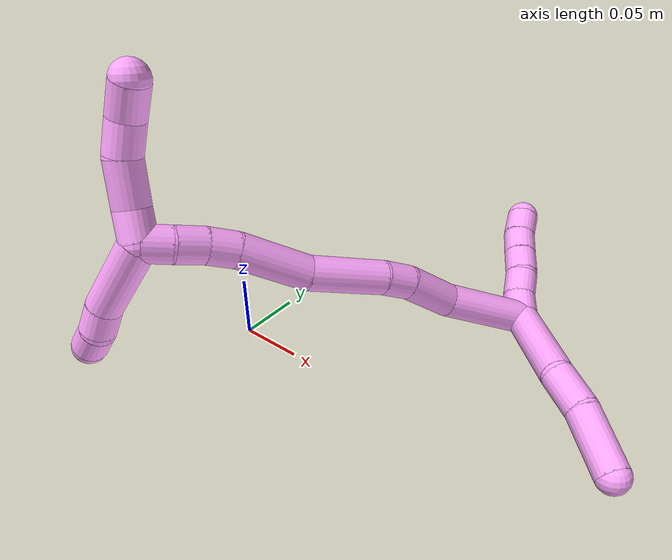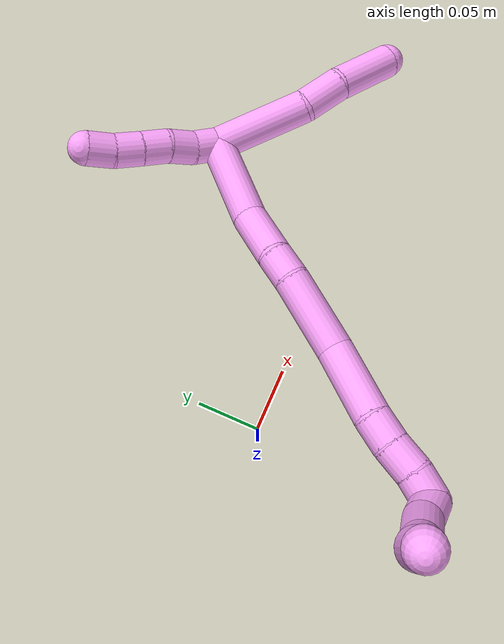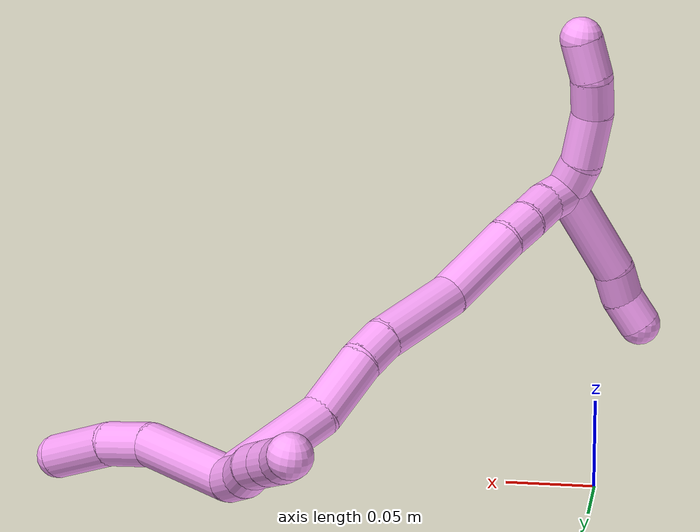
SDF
<sdf version="1.7">
 <world name="default">
  <model name="4">
   <static>0</static>
   <link name="4">
    <collision name="collision-cylinder-e_1_2_8">
     <pose>0.015532 -0.031163 -0.00618 1.76655 0.454726 0.549257</pose>
     <geometry><cylinder><radius>0.0125</radius><length>0.070727</length></cylinder></geometry>
     <surface>
      <friction><ode><mu>1.16</mu><mu2>1.16</mu2><slip1>0</slip1><slip2>0</slip2></ode></friction>
      <contact><ode><kp>1e+06</kp><kd>1</kd><max_vel>0</max_vel><min_depth>0.001</min_depth></ode></contact>
     </surface>
    </collision>
    <visual name="visual-cylinder-e_1_2_8">
     <pose>0.015532 -0.031163 -0.00618 1.76655 0.454726 0.549257</pose>
     <geometry><cylinder><radius>0.0125</radius><length>0.070727</length></cylinder></geometry>
     <material><ambient>1 0.65098 0.996078 1</ambient></material>
    </visual>
    <collision name="collision-cylinder-e_2_8_9">
     <pose>0.040198 -0.073799 -0.018293 2.04813 0.615501 0.962572</pose>
     <geometry><cylinder><radius>0.0125</radius><length>0.031639</length></cylinder></geometry>
     <surface>
      <friction><ode><mu>1.16</mu><mu2>1.16</mu2><slip1>0</slip1><slip2>0</slip2></ode></friction>
      <contact><ode><kp>1e+06</kp><kd>1</kd><max_vel>0</max_vel><min_depth>0.001</min_depth></ode></contact>
     </surface>
    </collision>
    <visual name="visual-cylinder-e_2_8_9">
     <pose>0.040198 -0.073799 -0.018293 2.04813 0.615501 0.962572</pose>
     <geometry><cylinder><radius>0.0125</radius><length>0.031639</length></cylinder></geometry>
     <material><ambient>1 0.65098 0.996078 1</ambient></material>
    </visual>
    <collision name="collision-cylinder-e_3_9_6">
     <pose>0.06032 -0.101998 -0.03714 2.22823 0.479538 0.923416</pose>
     <geometry><cylinder><radius>0.0125</radius><length>0.047634</length></cylinder></geometry>
     <surface>
      <friction><ode><mu>1.16</mu><mu2>1.16</mu2><slip1>0</slip1><slip2>0</slip2></ode></friction>
      <contact><ode><kp>1e+06</kp><kd>1</kd><max_vel>0</max_vel><min_depth>0.001</min_depth></ode></contact>
     </surface>
    </collision>
    <visual name="visual-cylinder-e_3_9_6">
     <pose>0.06032 -0.101998 -0.03714 2.22823 0.479538 0.923416</pose>
     <geometry><cylinder><radius>0.0125</radius><length>0.047634</length></cylinder></geometry>
     <material><ambient>1 0.65098 0.996078 1</ambient></material>
    </visual>
    <collision name="collision-cylinder-e_1_2_10">
     <pose>-0.002071 0.008058 0.005548 -0.967786 -0.208612 0.109928</pose>
     <geometry><cylinder><radius>0.0125</radius><length>0.02</length></cylinder></geometry>
     <surface>
      <friction><ode><mu>1.16</mu><mu2>1.16</mu2><slip1>0</slip1><slip2>0</slip2></ode></friction>
      <contact><ode><kp>1e+06</kp><kd>1</kd><max_vel>0</max_vel><min_depth>0.001</min_depth></ode></contact>
     </surface>
    </collision>
    <visual name="visual-cylinder-e_1_2_10">
     <pose>-0.002071 0.008058 0.005548 -0.967786 -0.208612 0.109928</pose>
     <geometry><cylinder><radius>0.0125</radius><length>0.02</length></cylinder></geometry>
     <material><ambient>1 0.65098 0.996078 1</ambient></material>
    </visual>
    <collision name="collision-cylinder-e_2_10_11">
     <pose>-0.004224 0.023584 0.017746 -0.84334 -0.0082 0.003678</pose>
     <geometry><cylinder><radius>0.0125</radius><length>0.02</length></cylinder></geometry>
     <surface>
      <friction><ode><mu>1.16</mu><mu2>1.16</mu2><slip1>0</slip1><slip2>0</slip2></ode></friction>
      <contact><ode><kp>1e+06</kp><kd>1</kd><max_vel>0</max_vel><min_depth>0.001</min_depth></ode></contact>
     </surface>
    </collision>
    <visual name="visual-cylinder-e_2_10_11">
     <pose>-0.004224 0.023584 0.017746 -0.84334 -0.0082 0.003678</pose>
     <geometry><cylinder><radius>0.0125</radius><length>0.02</length></cylinder></geometry>
     <material><ambient>1 0.65098 0.996078 1</ambient></material>
    </visual>
    <collision name="collision-cylinder-e_3_11_12">
     <pose>-0.00599 0.039287 0.029814 -0.988756 -0.169205 0.09136</pose>
     <geometry><cylinder><radius>0.0125</radius><length>0.02</length></cylinder></geometry>
     <surface>
      <friction><ode><mu>1.16</mu><mu2>1.16</mu2><slip1>0</slip1><slip2>0</slip2></ode></friction>
      <contact><ode><kp>1e+06</kp><kd>1</kd><max_vel>0</max_vel><min_depth>0.001</min_depth></ode></contact>
     </surface>
    </collision>
    <visual name="visual-cylinder-e_3_11_12">
     <pose>-0.00599 0.039287 0.029814 -0.988756 -0.169205 0.09136</pose>
     <geometry><cylinder><radius>0.0125</radius><length>0.02</length></cylinder></geometry>
     <material><ambient>1 0.65098 0.996078 1</ambient></material>
    </visual>
    <collision name="collision-cylinder-e_4_12_13">
     <pose>-0.009169 0.055881 0.040512 -1.00756 -0.1501 0.082847</pose>
     <geometry><cylinder><radius>0.0125</radius><length>0.02</length></cylinder></geometry>
     <surface>
      <friction><ode><mu>1.16</mu><mu2>1.16</mu2><slip1>0</slip1><slip2>0</slip2></ode></friction>
      <contact><ode><kp>1e+06</kp><kd>1</kd><max_vel>0</max_vel><min_depth>0.001</min_depth></ode></contact>
     </surface>
    </collision>
    <visual name="visual-cylinder-e_4_12_13">
     <pose>-0.009169 0.055881 0.040512 -1.00756 -0.1501 0.082847</pose>
     <geometry><cylinder><radius>0.0125</radius><length>0.02</length></cylinder></geometry>
     <material><ambient>1 0.65098 0.996078 1</ambient></material>
    </visual>
    <collision name="collision-cylinder-e_5_13_5">
     <pose>-0.01036 0.072503 0.051417 -0.97303 0.03046 -0.016112</pose>
     <geometry><cylinder><radius>0.0125</radius><length>0.02</length></cylinder></geometry>
     <surface>
      <friction><ode><mu>1.16</mu><mu2>1.16</mu2><slip1>0</slip1><slip2>0</slip2></ode></friction>
      <contact><ode><kp>1e+06</kp><kd>1</kd><max_vel>0</max_vel><min_depth>0.001</min_depth></ode></contact>
     </surface>
    </collision>
    <visual name="visual-cylinder-e_5_13_5">
     <pose>-0.01036 0.072503 0.051417 -0.97303 0.03046 -0.016112</pose>
     <geometry><cylinder><radius>0.0125</radius><length>0.02</length></cylinder></geometry>
     <material><ambient>1 0.65098 0.996078 1</ambient></material>
    </visual>
    <collision name="collision-cylinder-e_1_2_14">
     <pose>-0.026912 -0.016156 0.011713 0.943496 -0.932744 -0.50278</pose>
     <geometry><cylinder><radius>0.0125</radius><length>0.067006</length></cylinder></geometry>
     <surface>
      <friction><ode><mu>1.16</mu><mu2>1.16</mu2><slip1>0</slip1><slip2>0</slip2></ode></friction>
      <contact><ode><kp>1e+06</kp><kd>1</kd><max_vel>0</max_vel><min_depth>0.001</min_depth></ode></contact>
     </surface>
    </collision>
    <visual name="visual-cylinder-e_1_2_14">
     <pose>-0.026912 -0.016156 0.011713 0.943496 -0.932744 -0.50278</pose>
     <geometry><cylinder><radius>0.0125</radius><length>0.067006</length></cylinder></geometry>
     <material><ambient>1 0.65098 0.996078 1</ambient></material>
    </visual>
    <collision name="collision-cylinder-e_2_14_15">
     <pose>-0.06621 -0.043922 0.034211 0.822237 -0.663462 -0.298115</pose>
     <geometry><cylinder><radius>0.0125</radius><length>0.040225</length></cylinder></geometry>
     <surface>
      <friction><ode><mu>1.16</mu><mu2>1.16</mu2><slip1>0</slip1><slip2>0</slip2></ode></friction>
      <contact><ode><kp>1e+06</kp><kd>1</kd><max_vel>0</max_vel><min_depth>0.001</min_depth></ode></contact>
     </surface>
    </collision>
    <visual name="visual-cylinder-e_2_14_15">
     <pose>-0.06621 -0.043922 0.034211 0.822237 -0.663462 -0.298115</pose>
     <geometry><cylinder><radius>0.0125</radius><length>0.040225</length></cylinder></geometry>
     <material><ambient>1 0.65098 0.996078 1</ambient></material>
    </visual>
    <collision name="collision-cylinder-e_3_15_16">
     <pose>-0.086099 -0.062386 0.048832 1.06047 -0.762575 -0.461669</pose>
     <geometry><cylinder><radius>0.0125</radius><length>0.021725</length></cylinder></geometry>
     <surface>
      <friction><ode><mu>1.16</mu><mu2>1.16</mu2><slip1>0</slip1><slip2>0</slip2></ode></friction>
      <contact><ode><kp>1e+06</kp><kd>1</kd><max_vel>0</max_vel><min_depth>0.001</min_depth></ode></contact>
     </surface>
    </collision>
    <visual name="visual-cylinder-e_3_15_16">
     <pose>-0.086099 -0.062386 0.048832 1.06047 -0.762575 -0.461669</pose>
     <geometry><cylinder><radius>0.0125</radius><length>0.021725</length></cylinder></geometry>
     <material><ambient>1 0.65098 0.996078 1</ambient></material>
    </visual>
    <collision name="collision-cylinder-e_4_16_17">
     <pose>-0.115652 -0.085906 0.058932 1.21128 -0.891501 -0.639059</pose>
     <geometry><cylinder><radius>0.0125</radius><length>0.056681</length></cylinder></geometry>
     <surface>
      <friction><ode><mu>1.16</mu><mu2>1.16</mu2><slip1>0</slip1><slip2>0</slip2></ode></friction>
      <contact><ode><kp>1e+06</kp><kd>1</kd><max_vel>0</max_vel><min_depth>0.001</min_depth></ode></contact>
     </surface>
    </collision>
    <visual name="visual-cylinder-e_4_16_17">
     <pose>-0.115652 -0.085906 0.058932 1.21128 -0.891501 -0.639059</pose>
     <geometry><cylinder><radius>0.0125</radius><length>0.056681</length></cylinder></geometry>
     <material><ambient>1 0.65098 0.996078 1</ambient></material>
    </visual>
    <collision name="collision-cylinder-e_5_17_18">
     <pose>-0.156197 -0.116634 0.07697 0.873755 -0.789596 -0.384348</pose>
     <geometry><cylinder><radius>0.0125</radius><length>0.052093</length></cylinder></geometry>
     <surface>
      <friction><ode><mu>1.16</mu><mu2>1.16</mu2><slip1>0</slip1><slip2>0</slip2></ode></friction>
      <contact><ode><kp>1e+06</kp><kd>1</kd><max_vel>0</max_vel><min_depth>0.001</min_depth></ode></contact>
     </surface>
    </collision>
    <visual name="visual-cylinder-e_5_17_18">
     <pose>-0.156197 -0.116634 0.07697 0.873755 -0.789596 -0.384348</pose>
     <geometry><cylinder><radius>0.0125</radius><length>0.052093</length></cylinder></geometry>
     <material><ambient>1 0.65098 0.996078 1</ambient></material>
    </visual>
    <collision name="collision-cylinder-e_6_18_19">
     <pose>-0.182252 -0.137121 0.091962 1.10639 -0.810811 -0.518136</pose>
     <geometry><cylinder><radius>0.0125</radius><length>0.020861</length></cylinder></geometry>
     <surface>
      <friction><ode><mu>1.16</mu><mu2>1.16</mu2><slip1>0</slip1><slip2>0</slip2></ode></friction>
      <contact><ode><kp>1e+06</kp><kd>1</kd><max_vel>0</max_vel><min_depth>0.001</min_depth></ode></contact>
     </surface>
    </collision>
    <visual name="visual-cylinder-e_6_18_19">
     <pose>-0.182252 -0.137121 0.091962 1.10639 -0.810811 -0.518136</pose>
     <geometry><cylinder><radius>0.0125</radius><length>0.020861</length></cylinder></geometry>
     <material><ambient>1 0.65098 0.996078 1</ambient></material>
    </visual>
    <collision name="collision-cylinder-e_7_19_20">
     <pose>-0.197002 -0.151069 0.097505 1.27113 -0.740021 -0.557357</pose>
     <geometry><cylinder><radius>0.0125</radius><length>0.021325</length></cylinder></geometry>
     <surface>
      <friction><ode><mu>1.16</mu><mu2>1.16</mu2><slip1>0</slip1><slip2>0</slip2></ode></friction>
      <contact><ode><kp>1e+06</kp><kd>1</kd><max_vel>0</max_vel><min_depth>0.001</min_depth></ode></contact>
     </surface>
    </collision>
    <visual name="visual-cylinder-e_7_19_20">
     <pose>-0.197002 -0.151069 0.097505 1.27113 -0.740021 -0.557357</pose>
     <geometry><cylinder><radius>0.0125</radius><length>0.021325</length></cylinder></geometry>
     <material><ambient>1 0.65098 0.996078 1</ambient></material>
    </visual>
    <collision name="collision-cylinder-e_8_20_1">
     <pose>-0.212137 -0.164442 0.101696 1.26197 -0.912814 -0.688849</pose>
     <geometry><cylinder><radius>0.0125</radius><length>0.020084</length></cylinder></geometry>
     <surface>
      <friction><ode><mu>1.16</mu><mu2>1.16</mu2><slip1>0</slip1><slip2>0</slip2></ode></friction>
      <contact><ode><kp>1e+06</kp><kd>1</kd><max_vel>0</max_vel><min_depth>0.001</min_depth></ode></contact>
     </surface>
    </collision>
    <visual name="visual-cylinder-e_8_20_1">
     <pose>-0.212137 -0.164442 0.101696 1.26197 -0.912814 -0.688849</pose>
     <geometry><cylinder><radius>0.0125</radius><length>0.020084</length></cylinder></geometry>
     <material><ambient>1 0.65098 0.996078 1</ambient></material>
    </visual>
    <collision name="collision-cylinder-e_1_1_21">
     <pose>-0.222329 -0.167917 0.113825 -0.227456 -0.210106 0.024086</pose>
     <geometry><cylinder><radius>0.0125</radius><length>0.021543</length></cylinder></geometry>
     <surface>
      <friction><ode><mu>1.16</mu><mu2>1.16</mu2><slip1>0</slip1><slip2>0</slip2></ode></friction>
      <contact><ode><kp>1e+06</kp><kd>1</kd><max_vel>0</max_vel><min_depth>0.001</min_depth></ode></contact>
     </surface>
    </collision>
    <visual name="visual-cylinder-e_1_1_21">
     <pose>-0.222329 -0.167917 0.113825 -0.227456 -0.210106 0.024086</pose>
     <geometry><cylinder><radius>0.0125</radius><length>0.021543</length></cylinder></geometry>
     <material><ambient>1 0.65098 0.996078 1</ambient></material>
    </visual>
    <collision name="collision-cylinder-e_2_21_22">
     <pose>-0.225224 -0.165216 0.139799 -0.020714 -0.041249 0.000427</pose>
     <geometry><cylinder><radius>0.0125</radius><length>0.031454</length></cylinder></geometry>
     <surface>
      <friction><ode><mu>1.16</mu><mu2>1.16</mu2><slip1>0</slip1><slip2>0</slip2></ode></friction>
      <contact><ode><kp>1e+06</kp><kd>1</kd><max_vel>0</max_vel><min_depth>0.001</min_depth></ode></contact>
     </surface>
    </collision>
    <visual name="visual-cylinder-e_2_21_22">
     <pose>-0.225224 -0.165216 0.139799 -0.020714 -0.041249 0.000427</pose>
     <geometry><cylinder><radius>0.0125</radius><length>0.031454</length></cylinder></geometry>
     <material><ambient>1 0.65098 0.996078 1</ambient></material>
    </visual>
    <collision name="collision-cylinder-e_3_22_23">
     <pose>-0.223431 -0.163744 0.16672 -0.101882 0.213392 -0.010921</pose>
     <geometry><cylinder><radius>0.0125</radius><length>0.023062</length></cylinder></geometry>
     <surface>
      <friction><ode><mu>1.16</mu><mu2>1.16</mu2><slip1>0</slip1><slip2>0</slip2></ode></friction>
      <contact><ode><kp>1e+06</kp><kd>1</kd><max_vel>0</max_vel><min_depth>0.001</min_depth></ode></contact>
     </surface>
    </collision>
    <visual name="visual-cylinder-e_3_22_23">
     <pose>-0.223431 -0.163744 0.16672 -0.101882 0.213392 -0.010921</pose>
     <geometry><cylinder><radius>0.0125</radius><length>0.023062</length></cylinder></geometry>
     <material><ambient>1 0.65098 0.996078 1</ambient></material>
    </visual>
    <collision name="collision-cylinder-e_4_23_4">
     <pose>-0.216576 -0.164291 0.188929 0.152707 0.377546 0.029229</pose>
     <geometry><cylinder><radius>0.0125</radius><length>0.023941</length></cylinder></geometry>
     <surface>
      <friction><ode><mu>1.16</mu><mu2>1.16</mu2><slip1>0</slip1><slip2>0</slip2></ode></friction>
      <contact><ode><kp>1e+06</kp><kd>1</kd><max_vel>0</max_vel><min_depth>0.001</min_depth></ode></contact>
     </surface>
    </collision>
    <visual name="visual-cylinder-e_4_23_4">
     <pose>-0.216576 -0.164291 0.188929 0.152707 0.377546 0.029229</pose>
     <geometry><cylinder><radius>0.0125</radius><length>0.023941</length></cylinder></geometry>
     <material><ambient>1 0.65098 0.996078 1</ambient></material>
    </visual>
    <collision name="collision-cylinder-e_1_1_24">
     <pose>-0.23803 -0.168819 0.079816 -3.07965 -0.646281 2.95708</pose>
     <geometry><cylinder><radius>0.0125</radius><length>0.059603</length></cylinder></geometry>
     <surface>
      <friction><ode><mu>1.16</mu><mu2>1.16</mu2><slip1>0</slip1><slip2>0</slip2></ode></friction>
      <contact><ode><kp>1e+06</kp><kd>1</kd><max_vel>0</max_vel><min_depth>0.001</min_depth></ode></contact>
     </surface>
    </collision>
    <visual name="visual-cylinder-e_1_1_24">
     <pose>-0.23803 -0.168819 0.079816 -3.07965 -0.646281 2.95708</pose>
     <geometry><cylinder><radius>0.0125</radius><length>0.059603</length></cylinder></geometry>
     <material><ambient>1 0.65098 0.996078 1</ambient></material>
    </visual>
    <collision name="collision-cylinder-e_2_24_25">
     <pose>-0.260203 -0.167544 0.046868 3.12016 -0.430404 -3.04361</pose>
     <geometry><cylinder><radius>0.0125</radius><length>0.020258</length></cylinder></geometry>
     <surface>
      <friction><ode><mu>1.16</mu><mu2>1.16</mu2><slip1>0</slip1><slip2>0</slip2></ode></friction>
      <contact><ode><kp>1e+06</kp><kd>1</kd><max_vel>0</max_vel><min_depth>0.001</min_depth></ode></contact>
     </surface>
    </collision>
    <visual name="visual-cylinder-e_2_24_25">
     <pose>-0.260203 -0.167544 0.046868 3.12016 -0.430404 -3.04361</pose>
     <geometry><cylinder><radius>0.0125</radius><length>0.020258</length></cylinder></geometry>
     <material><ambient>1 0.65098 0.996078 1</ambient></material>
    </visual>
    <collision name="collision-cylinder-e_3_25_3">
     <pose>-0.270597 -0.165553 0.030012 -2.86306 -0.659317 2.36391</pose>
     <geometry><cylinder><radius>0.0125</radius><length>0.02014</length></cylinder></geometry>
     <surface>
      <friction><ode><mu>1.16</mu><mu2>1.16</mu2><slip1>0</slip1><slip2>0</slip2></ode></friction>
      <contact><ode><kp>1e+06</kp><kd>1</kd><max_vel>0</max_vel><min_depth>0.001</min_depth></ode></contact>
     </surface>
    </collision>
    <visual name="visual-cylinder-e_3_25_3">
     <pose>-0.270597 -0.165553 0.030012 -2.86306 -0.659317 2.36391</pose>
     <geometry><cylinder><radius>0.0125</radius><length>0.02014</length></cylinder></geometry>
     <material><ambient>1 0.65098 0.996078 1</ambient></material>
    </visual>
    <collision name="collision-sphere-3">
     <pose>-0.276766 -0.163364 0.02236 0 -0 0</pose>
     <geometry><sphere><radius>0.0125</radius></sphere></geometry>
     <surface>
      <friction><ode><mu>1.16</mu><mu2>1.16</mu2><slip1>0</slip1><slip2>0</slip2></ode></friction>
      <contact><ode><kp>1e+06</kp><kd>1</kd><max_vel>0</max_vel><min_depth>0.001</min_depth></ode></contact>
     </surface>
    </collision>
    <visual name="visual-sphere-3">
     <pose>-0.276766 -0.163364 0.02236 0 -0 0</pose>
     <geometry><sphere><radius>0.0125</radius></sphere></geometry>
     <material><ambient>1 0.65098 0.996078 1</ambient></material>
    </visual>
    <collision name="collision-sphere-25">
     <pose>-0.264429 -0.167741 0.037665 0 -0 0</pose>
     <geometry><sphere><radius>0.0125</radius></sphere></geometry>
     <surface>
      <friction><ode><mu>1.16</mu><mu2>1.16</mu2><slip1>0</slip1><slip2>0</slip2></ode></friction>
      <contact><ode><kp>1e+06</kp><kd>1</kd><max_vel>0</max_vel><min_depth>0.001</min_depth></ode></contact>
     </surface>
    </collision>
    <visual name="visual-sphere-25">
     <pose>-0.264429 -0.167741 0.037665 0 -0 0</pose>
     <geometry><sphere><radius>0.0125</radius></sphere></geometry>
     <material><ambient>1 0.65098 0.996078 1</ambient></material>
    </visual>
    <collision name="collision-sphere-24">
     <pose>-0.255977 -0.167347 0.056071 0 -0 0</pose>
     <geometry><sphere><radius>0.0125</radius></sphere></geometry>
     <surface>
      <friction><ode><mu>1.16</mu><mu2>1.16</mu2><slip1>0</slip1><slip2>0</slip2></ode></friction>
      <contact><ode><kp>1e+06</kp><kd>1</kd><max_vel>0</max_vel><min_depth>0.001</min_depth></ode></contact>
     </surface>
    </collision>
    <visual name="visual-sphere-24">
     <pose>-0.255977 -0.167347 0.056071 0 -0 0</pose>
     <geometry><sphere><radius>0.0125</radius></sphere></geometry>
     <material><ambient>1 0.65098 0.996078 1</ambient></material>
    </visual>
    <collision name="collision-sphere-4">
     <pose>-0.212163 -0.165983 0.199927 0 -0 0</pose>
     <geometry><sphere><radius>0.0125</radius></sphere></geometry>
     <surface>
      <friction><ode><mu>1.16</mu><mu2>1.16</mu2><slip1>0</slip1><slip2>0</slip2></ode></friction>
      <contact><ode><kp>1e+06</kp><kd>1</kd><max_vel>0</max_vel><min_depth>0.001</min_depth></ode></contact>
     </surface>
    </collision>
    <visual name="visual-sphere-4">
     <pose>-0.212163 -0.165983 0.199927 0 -0 0</pose>
     <geometry><sphere><radius>0.0125</radius></sphere></geometry>
     <material><ambient>1 0.65098 0.996078 1</ambient></material>
    </visual>
    <collision name="collision-sphere-23">
     <pose>-0.220989 -0.162598 0.177931 0 -0 0</pose>
     <geometry><sphere><radius>0.0125</radius></sphere></geometry>
     <surface>
      <friction><ode><mu>1.16</mu><mu2>1.16</mu2><slip1>0</slip1><slip2>0</slip2></ode></friction>
      <contact><ode><kp>1e+06</kp><kd>1</kd><max_vel>0</max_vel><min_depth>0.001</min_depth></ode></contact>
     </surface>
    </collision>
    <visual name="visual-sphere-23">
     <pose>-0.220989 -0.162598 0.177931 0 -0 0</pose>
     <geometry><sphere><radius>0.0125</radius></sphere></geometry>
     <material><ambient>1 0.65098 0.996078 1</ambient></material>
    </visual>
    <collision name="collision-sphere-22">
     <pose>-0.225873 -0.16489 0.155509 0 -0 0</pose>
     <geometry><sphere><radius>0.0125</radius></sphere></geometry>
     <surface>
      <friction><ode><mu>1.16</mu><mu2>1.16</mu2><slip1>0</slip1><slip2>0</slip2></ode></friction>
      <contact><ode><kp>1e+06</kp><kd>1</kd><max_vel>0</max_vel><min_depth>0.001</min_depth></ode></contact>
     </surface>
    </collision>
    <visual name="visual-sphere-22">
     <pose>-0.225873 -0.16489 0.155509 0 -0 0</pose>
     <geometry><sphere><radius>0.0125</radius></sphere></geometry>
     <material><ambient>1 0.65098 0.996078 1</ambient></material>
    </visual>
    <collision name="collision-sphere-21">
     <pose>-0.224576 -0.165541 0.124089 0 -0 0</pose>
     <geometry><sphere><radius>0.0125</radius></sphere></geometry>
     <surface>
      <friction><ode><mu>1.16</mu><mu2>1.16</mu2><slip1>0</slip1><slip2>0</slip2></ode></friction>
      <contact><ode><kp>1e+06</kp><kd>1</kd><max_vel>0</max_vel><min_depth>0.001</min_depth></ode></contact>
     </surface>
    </collision>
    <visual name="visual-sphere-21">
     <pose>-0.224576 -0.165541 0.124089 0 -0 0</pose>
     <geometry><sphere><radius>0.0125</radius></sphere></geometry>
     <material><ambient>1 0.65098 0.996078 1</ambient></material>
    </visual>
    <collision name="collision-sphere-1">
     <pose>-0.220083 -0.170292 0.103562 0 -0 0</pose>
     <geometry><sphere><radius>0.0125</radius></sphere></geometry>
     <surface>
      <friction><ode><mu>1.16</mu><mu2>1.16</mu2><slip1>0</slip1><slip2>0</slip2></ode></friction>
      <contact><ode><kp>1e+06</kp><kd>1</kd><max_vel>0</max_vel><min_depth>0.001</min_depth></ode></contact>
     </surface>
    </collision>
    <visual name="visual-sphere-1">
     <pose>-0.220083 -0.170292 0.103562 0 -0 0</pose>
     <geometry><sphere><radius>0.0125</radius></sphere></geometry>
     <material><ambient>1 0.65098 0.996078 1</ambient></material>
    </visual>
    <collision name="collision-sphere-11">
     <pose>-0.004306 0.031052 0.024396 0 -0 0</pose>
     <geometry><sphere><radius>0.0125</radius></sphere></geometry>
     <surface>
      <friction><ode><mu>1.16</mu><mu2>1.16</mu2><slip1>0</slip1><slip2>0</slip2></ode></friction>
      <contact><ode><kp>1e+06</kp><kd>1</kd><max_vel>0</max_vel><min_depth>0.001</min_depth></ode></contact>
     </surface>
    </collision>
    <visual name="visual-sphere-11">
     <pose>-0.004306 0.031052 0.024396 0 -0 0</pose>
     <geometry><sphere><radius>0.0125</radius></sphere></geometry>
     <material><ambient>1 0.65098 0.996078 1</ambient></material>
    </visual>
    <collision name="collision-sphere-10">
     <pose>-0.004142 0.016116 0.011097 0 -0 0</pose>
     <geometry><sphere><radius>0.0125</radius></sphere></geometry>
     <surface>
      <friction><ode><mu>1.16</mu><mu2>1.16</mu2><slip1>0</slip1><slip2>0</slip2></ode></friction>
      <contact><ode><kp>1e+06</kp><kd>1</kd><max_vel>0</max_vel><min_depth>0.001</min_depth></ode></contact>
     </surface>
    </collision>
    <visual name="visual-sphere-10">
     <pose>-0.004142 0.016116 0.011097 0 -0 0</pose>
     <geometry><sphere><radius>0.0125</radius></sphere></geometry>
     <material><ambient>1 0.65098 0.996078 1</ambient></material>
    </visual>
    <collision name="collision-sphere-6">
     <pose>0.071309 -0.118724 -0.050052 0 -0 0</pose>
     <geometry><sphere><radius>0.0125</radius></sphere></geometry>
     <surface>
      <friction><ode><mu>1.16</mu><mu2>1.16</mu2><slip1>0</slip1><slip2>0</slip2></ode></friction>
      <contact><ode><kp>1e+06</kp><kd>1</kd><max_vel>0</max_vel><min_depth>0.001</min_depth></ode></contact>
     </surface>
    </collision>
    <visual name="visual-sphere-6">
     <pose>0.071309 -0.118724 -0.050052 0 -0 0</pose>
     <geometry><sphere><radius>0.0125</radius></sphere></geometry>
     <material><ambient>1 0.65098 0.996078 1</ambient></material>
    </visual>
    <collision name="collision-sphere-9">
     <pose>0.049332 -0.085272 -0.024227 0 -0 0</pose>
     <geometry><sphere><radius>0.0125</radius></sphere></geometry>
     <surface>
      <friction><ode><mu>1.16</mu><mu2>1.16</mu2><slip1>0</slip1><slip2>0</slip2></ode></friction>
      <contact><ode><kp>1e+06</kp><kd>1</kd><max_vel>0</max_vel><min_depth>0.001</min_depth></ode></contact>
     </surface>
    </collision>
    <visual name="visual-sphere-9">
     <pose>0.049332 -0.085272 -0.024227 0 -0 0</pose>
     <geometry><sphere><radius>0.0125</radius></sphere></geometry>
     <material><ambient>1 0.65098 0.996078 1</ambient></material>
    </visual>
    <collision name="collision-sphere-2">
     <geometry><sphere><radius>0.0125</radius></sphere></geometry>
     <surface>
      <friction><ode><mu>1.16</mu><mu2>1.16</mu2><slip1>0</slip1><slip2>0</slip2></ode></friction>
      <contact><ode><kp>1e+06</kp><kd>1</kd><max_vel>0</max_vel><min_depth>0.001</min_depth></ode></contact>
     </surface>
    </collision>
    <visual name="visual-sphere-2">
     <geometry><sphere><radius>0.0125</radius></sphere></geometry>
     <material><ambient>1 0.65098 0.996078 1</ambient></material>
    </visual>
    <collision name="collision-sphere-19">
     <pose>-0.189812 -0.143546 0.09518 0 -0 0</pose>
     <geometry><sphere><radius>0.0125</radius></sphere></geometry>
     <surface>
      <friction><ode><mu>1.16</mu><mu2>1.16</mu2><slip1>0</slip1><slip2>0</slip2></ode></friction>
      <contact><ode><kp>1e+06</kp><kd>1</kd><max_vel>0</max_vel><min_depth>0.001</min_depth></ode></contact>
     </surface>
    </collision>
    <visual name="visual-sphere-19">
     <pose>-0.189812 -0.143546 0.09518 0 -0 0</pose>
     <geometry><sphere><radius>0.0125</radius></sphere></geometry>
     <material><ambient>1 0.65098 0.996078 1</ambient></material>
    </visual>
    <collision name="collision-sphere-8">
     <pose>0.031065 -0.062327 -0.012359 0 -0 0</pose>
     <geometry><sphere><radius>0.0125</radius></sphere></geometry>
     <surface>
      <friction><ode><mu>1.16</mu><mu2>1.16</mu2><slip1>0</slip1><slip2>0</slip2></ode></friction>
      <contact><ode><kp>1e+06</kp><kd>1</kd><max_vel>0</max_vel><min_depth>0.001</min_depth></ode></contact>
     </surface>
    </collision>
    <visual name="visual-sphere-8">
     <pose>0.031065 -0.062327 -0.012359 0 -0 0</pose>
     <geometry><sphere><radius>0.0125</radius></sphere></geometry>
     <material><ambient>1 0.65098 0.996078 1</ambient></material>
    </visual>
    <collision name="collision-sphere-12">
     <pose>-0.007674 0.047521 0.035233 0 -0 0</pose>
     <geometry><sphere><radius>0.0125</radius></sphere></geometry>
     <surface>
      <friction><ode><mu>1.16</mu><mu2>1.16</mu2><slip1>0</slip1><slip2>0</slip2></ode></friction>
      <contact><ode><kp>1e+06</kp><kd>1</kd><max_vel>0</max_vel><min_depth>0.001</min_depth></ode></contact>
     </surface>
    </collision>
    <visual name="visual-sphere-12">
     <pose>-0.007674 0.047521 0.035233 0 -0 0</pose>
     <geometry><sphere><radius>0.0125</radius></sphere></geometry>
     <material><ambient>1 0.65098 0.996078 1</ambient></material>
    </visual>
    <collision name="collision-sphere-13">
     <pose>-0.010665 0.064241 0.045792 0 -0 0</pose>
     <geometry><sphere><radius>0.0125</radius></sphere></geometry>
     <surface>
      <friction><ode><mu>1.16</mu><mu2>1.16</mu2><slip1>0</slip1><slip2>0</slip2></ode></friction>
      <contact><ode><kp>1e+06</kp><kd>1</kd><max_vel>0</max_vel><min_depth>0.001</min_depth></ode></contact>
     </surface>
    </collision>
    <visual name="visual-sphere-13">
     <pose>-0.010665 0.064241 0.045792 0 -0 0</pose>
     <geometry><sphere><radius>0.0125</radius></sphere></geometry>
     <material><ambient>1 0.65098 0.996078 1</ambient></material>
    </visual>
    <collision name="collision-sphere-5">
     <pose>-0.010056 0.080765 0.057042 0 -0 0</pose>
     <geometry><sphere><radius>0.0125</radius></sphere></geometry>
     <surface>
      <friction><ode><mu>1.16</mu><mu2>1.16</mu2><slip1>0</slip1><slip2>0</slip2></ode></friction>
      <contact><ode><kp>1e+06</kp><kd>1</kd><max_vel>0</max_vel><min_depth>0.001</min_depth></ode></contact>
     </surface>
    </collision>
    <visual name="visual-sphere-5">
     <pose>-0.010056 0.080765 0.057042 0 -0 0</pose>
     <geometry><sphere><radius>0.0125</radius></sphere></geometry>
     <material><ambient>1 0.65098 0.996078 1</ambient></material>
    </visual>
    <collision name="collision-sphere-14">
     <pose>-0.053823 -0.032313 0.023426 0 -0 0</pose>
     <geometry><sphere><radius>0.0125</radius></sphere></geometry>
     <surface>
      <friction><ode><mu>1.16</mu><mu2>1.16</mu2><slip1>0</slip1><slip2>0</slip2></ode></friction>
      <contact><ode><kp>1e+06</kp><kd>1</kd><max_vel>0</max_vel><min_depth>0.001</min_depth></ode></contact>
     </surface>
    </collision>
    <visual name="visual-sphere-14">
     <pose>-0.053823 -0.032313 0.023426 0 -0 0</pose>
     <geometry><sphere><radius>0.0125</radius></sphere></geometry>
     <material><ambient>1 0.65098 0.996078 1</ambient></material>
    </visual>
    <collision name="collision-sphere-15">
     <pose>-0.078596 -0.055532 0.044995 0 -0 0</pose>
     <geometry><sphere><radius>0.0125</radius></sphere></geometry>
     <surface>
      <friction><ode><mu>1.16</mu><mu2>1.16</mu2><slip1>0</slip1><slip2>0</slip2></ode></friction>
      <contact><ode><kp>1e+06</kp><kd>1</kd><max_vel>0</max_vel><min_depth>0.001</min_depth></ode></contact>
     </surface>
    </collision>
    <visual name="visual-sphere-15">
     <pose>-0.078596 -0.055532 0.044995 0 -0 0</pose>
     <geometry><sphere><radius>0.0125</radius></sphere></geometry>
     <material><ambient>1 0.65098 0.996078 1</ambient></material>
    </visual>
    <collision name="collision-sphere-16">
     <pose>-0.093603 -0.069239 0.052668 0 -0 0</pose>
     <geometry><sphere><radius>0.0125</radius></sphere></geometry>
     <surface>
      <friction><ode><mu>1.16</mu><mu2>1.16</mu2><slip1>0</slip1><slip2>0</slip2></ode></friction>
      <contact><ode><kp>1e+06</kp><kd>1</kd><max_vel>0</max_vel><min_depth>0.001</min_depth></ode></contact>
     </surface>
    </collision>
    <visual name="visual-sphere-16">
     <pose>-0.093603 -0.069239 0.052668 0 -0 0</pose>
     <geometry><sphere><radius>0.0125</radius></sphere></geometry>
     <material><ambient>1 0.65098 0.996078 1</ambient></material>
    </visual>
    <collision name="collision-sphere-17">
     <pose>-0.137702 -0.102572 0.065197 0 -0 0</pose>
     <geometry><sphere><radius>0.0125</radius></sphere></geometry>
     <surface>
      <friction><ode><mu>1.16</mu><mu2>1.16</mu2><slip1>0</slip1><slip2>0</slip2></ode></friction>
      <contact><ode><kp>1e+06</kp><kd>1</kd><max_vel>0</max_vel><min_depth>0.001</min_depth></ode></contact>
     </surface>
    </collision>
    <visual name="visual-sphere-17">
     <pose>-0.137702 -0.102572 0.065197 0 -0 0</pose>
     <geometry><sphere><radius>0.0125</radius></sphere></geometry>
     <material><ambient>1 0.65098 0.996078 1</ambient></material>
    </visual>
    <collision name="collision-sphere-18">
     <pose>-0.174691 -0.130697 0.088744 0 -0 0</pose>
     <geometry><sphere><radius>0.0125</radius></sphere></geometry>
     <surface>
      <friction><ode><mu>1.16</mu><mu2>1.16</mu2><slip1>0</slip1><slip2>0</slip2></ode></friction>
      <contact><ode><kp>1e+06</kp><kd>1</kd><max_vel>0</max_vel><min_depth>0.001</min_depth></ode></contact>
     </surface>
    </collision>
    <visual name="visual-sphere-18">
     <pose>-0.174691 -0.130697 0.088744 0 -0 0</pose>
     <geometry><sphere><radius>0.0125</radius></sphere></geometry>
     <material><ambient>1 0.65098 0.996078 1</ambient></material>
    </visual>
    <collision name="collision-sphere-20">
     <pose>-0.204192 -0.158592 0.099829 0 -0 0</pose>
     <geometry><sphere><radius>0.0125</radius></sphere></geometry>
     <surface>
      <friction><ode><mu>1.16</mu><mu2>1.16</mu2><slip1>0</slip1><slip2>0</slip2></ode></friction>
      <contact><ode><kp>1e+06</kp><kd>1</kd><max_vel>0</max_vel><min_depth>0.001</min_depth></ode></contact>
     </surface>
    </collision>
    <visual name="visual-sphere-20">
     <pose>-0.204192 -0.158592 0.099829 0 -0 0</pose>
     <geometry><sphere><radius>0.0125</radius></sphere></geometry>
     <material><ambient>1 0.65098 0.996078 1</ambient></material>
    </visual>
    <inertial>
     <pose>-0.101073 -0.084346 0.051008 0 -0 0</pose>
     <mass>0.75</mass>
     <inertia><ixx>6.3e-05</ixx><ixy>0</ixy><ixz>0</ixz><iyy>8.6e-05</iyy><iyz>0</iyz><izz>0.000127</izz></inertia>
    </inertial>
   </link>
   <pose>0.188229 0.116114 0.032643 -0.193737 -0.090841 0.371554</pose>
  </model>
 </world>
</sdf>
